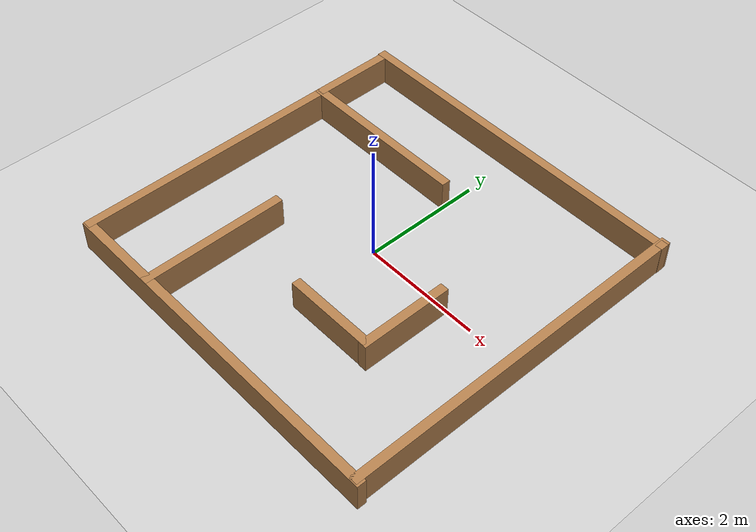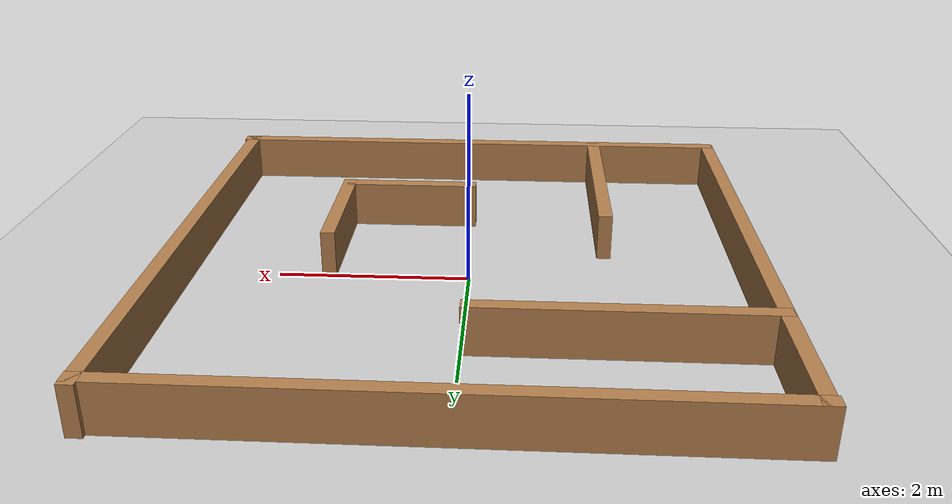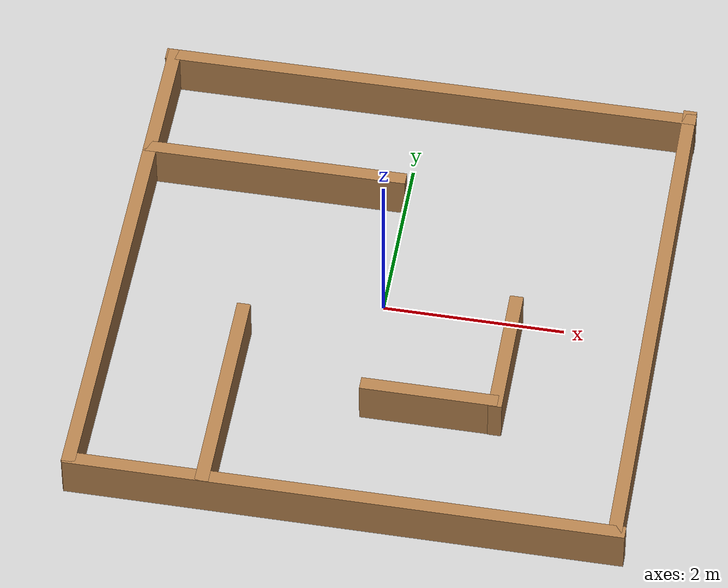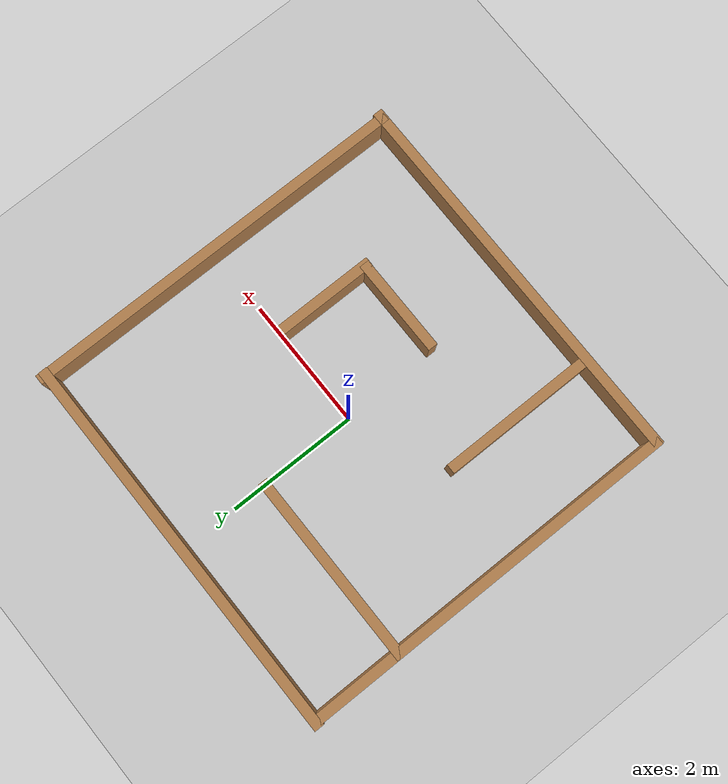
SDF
<sdf version="1.6">
 <world name="default">
  <light name="sun" type="directional">
   <pose>0 0 10 0 -0 0</pose>
   <diffuse>0.8 0.8 0.8 1</diffuse>
   <specular>0.2 0.2 0.2 1</specular>
   <attenuation>
    <range>1000</range>
    <constant>0.9</constant>
    <linear>0.01</linear>
    <quadratic>0.001</quadratic>
   </attenuation>
   <direction>-0.5 0.1 -0.9</direction>
  </light>
  <model name="ground_plane">
   <static>1</static>
   <link name="link">
    <collision name="collision">
     <geometry><plane><normal>0 0 1</normal><size>100 100</size></plane></geometry>
     <surface>
      <contact><collide_bitmask>65535</collide_bitmask></contact>
      <friction><ode><mu>100</mu><mu2>50</mu2></ode></friction>
     </surface>
    </collision>
    <visual name="visual">
     <cast_shadows>0</cast_shadows>
     <geometry><plane><normal>0 0 1</normal><size>100 100</size></plane></geometry>
     <material>
      <script><uri>file://media/materials/scripts/gazebo.material</uri><name>Gazebo/Grey</name></script>
     </material>
    </visual>
   </link>
  </model>
  <gravity>0 0 -9.8</gravity>
  <magnetic_field>6e-06 2.3e-05 -4.2e-05</magnetic_field>
  <atmosphere type="adiabatic"/>
  <physics name="default_physics" default="0" type="ode">
   <max_step_size>0.001</max_step_size>
   <real_time_factor>1</real_time_factor>
   <real_time_update_rate>1000</real_time_update_rate>
  </physics>
  <scene><ambient>0.4 0.4 0.4 1</ambient><background>0.7 0.7 0.7 1</background><shadows>1</shadows></scene>
  <audio><device>default</device></audio>
  <spherical_coordinates>
   <surface_model>EARTH_WGS84</surface_model>
   <latitude_deg>0</latitude_deg>
   <longitude_deg>0</longitude_deg>
   <elevation>0</elevation>
   <heading_deg>0</heading_deg>
  </spherical_coordinates>
  <model name="project_medium_v2">
   <link name="Wall_0">
    <pose>-0.00688 4.55592 0 0 -0 0</pose>
    <inertial>
     <inertia><ixx>0</ixx><ixy>0</ixy><ixz>0</ixz><iyy>0</iyy><iyz>0</iyz><izz>0</izz></inertia>
     <mass>0</mass>
    </inertial>
    <visual name="Wall_0_Visual">
     <pose>0 0 0.25 0 -0 0</pose>
     <geometry><box><size>6.03775 0.15 0.5</size></box></geometry>
     <material>
      <script><uri>file://media/materials/scripts/gazebo.material</uri><name>Gazebo/Wood</name></script>
      <ambient>1 1 1 1</ambient>
     </material>
    </visual>
    <collision name="Wall_0_Collision">
     <pose>0 0 0.25 0 -0 0</pose>
     <geometry><box><size>6.03775 0.15 0.5</size></box></geometry>
     <surface>
      <friction>
       <ode><mu>1</mu><mu2>1</mu2><fdir1>0 0 0</fdir1><slip1>0</slip1><slip2>0</slip2></ode>
       <torsional>
        <coefficient>1</coefficient>
        <patch_radius>0</patch_radius>
        <surface_radius>0</surface_radius>
        <use_patch_radius>1</use_patch_radius>
        <ode><slip>0</slip></ode>
       </torsional>
      </friction>
      <bounce><restitution_coefficient>0</restitution_coefficient><threshold>1e+06</threshold></bounce>
      <contact>
       <collide_without_contact>0</collide_without_contact>
       <collide_without_contact_bitmask>1</collide_without_contact_bitmask>
       <collide_bitmask>1</collide_bitmask>
       <ode>
        <soft_cfm>0</soft_cfm>
        <soft_erp>0.2</soft_erp>
        <kp>1e+13</kp>
        <kd>1</kd>
        <max_vel>0.01</max_vel>
        <min_depth>0</min_depth>
       </ode>
       <bullet>
        <split_impulse>1</split_impulse>
        <split_impulse_penetration_threshold>-0.01</split_impulse_penetration_threshold>
        <soft_cfm>0</soft_cfm>
        <soft_erp>0.2</soft_erp>
        <kp>1e+13</kp>
        <kd>1</kd>
       </bullet>
      </contact>
     </surface>
    </collision>
   </link>
   <link name="Wall_0_clone">
    <pose>-1.52053 3.15822 0 0 -0 0</pose>
    <inertial>
     <inertia><ixx>0</ixx><ixy>0</ixy><ixz>0</ixz><iyy>0</iyy><iyz>0</iyz><izz>0</izz></inertia>
     <mass>0</mass>
    </inertial>
    <visual name="Wall_0_Visual">
     <pose>0 0 0.25 0 -0 0</pose>
     <geometry><box><size>2.95345 0.15 0.5</size></box></geometry>
     <material>
      <script><uri>file://media/materials/scripts/gazebo.material</uri><name>Gazebo/Wood</name></script>
      <ambient>1 1 1 1</ambient>
      <shader type="pixel"/>
     </material>
    </visual>
    <collision name="Wall_0_Collision">
     <pose>0 0 0.25 0 -0 0</pose>
     <geometry><box><size>2.95345 0.15 0.5</size></box></geometry>
     <surface>
      <friction>
       <ode><mu>1</mu><mu2>1</mu2><fdir1>0 0 0</fdir1><slip1>0</slip1><slip2>0</slip2></ode>
       <torsional>
        <coefficient>1</coefficient>
        <patch_radius>0</patch_radius>
        <surface_radius>0</surface_radius>
        <use_patch_radius>1</use_patch_radius>
        <ode><slip>0</slip></ode>
       </torsional>
      </friction>
      <bounce><restitution_coefficient>0</restitution_coefficient><threshold>1e+06</threshold></bounce>
      <contact>
       <collide_without_contact>0</collide_without_contact>
       <collide_without_contact_bitmask>1</collide_without_contact_bitmask>
       <collide_bitmask>1</collide_bitmask>
       <ode>
        <soft_cfm>0</soft_cfm>
        <soft_erp>0.2</soft_erp>
        <kp>1e+13</kp>
        <kd>1</kd>
        <max_vel>0.01</max_vel>
        <min_depth>0</min_depth>
       </ode>
       <bullet>
        <split_impulse>1</split_impulse>
        <split_impulse_penetration_threshold>-0.01</split_impulse_penetration_threshold>
        <soft_cfm>0</soft_cfm>
        <soft_erp>0.2</soft_erp>
        <kp>1e+13</kp>
        <kd>1</kd>
       </bullet>
      </contact>
     </surface>
    </collision>
   </link>
   <link name="Wall_2">
    <pose>-2.93208 1.63826 0 0 0 -1.5708</pose>
    <inertial>
     <inertia><ixx>0</ixx><ixy>0</ixy><ixz>0</ixz><iyy>0</iyy><iyz>0</iyz><izz>0</izz></inertia>
     <mass>0</mass>
    </inertial>
    <visual name="Wall_2_Visual">
     <pose>0 0 0.25 0 -0 0</pose>
     <geometry><box><size>5.98367 0.15 0.5</size></box></geometry>
     <material>
      <script><uri>file://media/materials/scripts/gazebo.material</uri><name>Gazebo/Wood</name></script>
      <ambient>1 1 1 1</ambient>
     </material>
    </visual>
    <collision name="Wall_2_Collision">
     <pose>0 0 0.25 0 -0 0</pose>
     <geometry><box><size>5.98367 0.15 0.5</size></box></geometry>
     <surface>
      <friction>
       <ode><mu>1</mu><mu2>1</mu2><fdir1>0 0 0</fdir1><slip1>0</slip1><slip2>0</slip2></ode>
       <torsional>
        <coefficient>1</coefficient>
        <patch_radius>0</patch_radius>
        <surface_radius>0</surface_radius>
        <use_patch_radius>1</use_patch_radius>
        <ode><slip>0</slip></ode>
       </torsional>
      </friction>
      <bounce><restitution_coefficient>0</restitution_coefficient><threshold>1e+06</threshold></bounce>
      <contact>
       <collide_without_contact>0</collide_without_contact>
       <collide_without_contact_bitmask>1</collide_without_contact_bitmask>
       <collide_bitmask>1</collide_bitmask>
       <ode>
        <soft_cfm>0</soft_cfm>
        <soft_erp>0.2</soft_erp>
        <kp>1e+13</kp>
        <kd>1</kd>
        <max_vel>0.01</max_vel>
        <min_depth>0</min_depth>
       </ode>
       <bullet>
        <split_impulse>1</split_impulse>
        <split_impulse_penetration_threshold>-0.01</split_impulse_penetration_threshold>
        <soft_cfm>0</soft_cfm>
        <soft_erp>0.2</soft_erp>
        <kp>1e+13</kp>
        <kd>1</kd>
       </bullet>
      </contact>
     </surface>
    </collision>
   </link>
   <link name="Wall_2_clone">
    <pose>-1.48586 -0.140032 0 0 0 -1.5708</pose>
    <inertial>
     <inertia><ixx>0</ixx><ixy>0</ixy><ixz>0</ixz><iyy>0</iyy><iyz>0</iyz><izz>0</izz></inertia>
     <mass>0</mass>
    </inertial>
    <visual name="Wall_2_Visual">
     <pose>0 0 0.25 0 -0 0</pose>
     <geometry><box><size>2.46727 0.15 0.5</size></box></geometry>
     <material>
      <script><uri>file://media/materials/scripts/gazebo.material</uri><name>Gazebo/Wood</name></script>
      <ambient>1 1 1 1</ambient>
      <shader type="pixel"/>
     </material>
    </visual>
    <collision name="Wall_2_Collision">
     <pose>0 0 0.25 0 -0 0</pose>
     <geometry><box><size>2.46727 0.15 0.5</size></box></geometry>
     <surface>
      <friction>
       <ode><mu>1</mu><mu2>1</mu2><fdir1>0 0 0</fdir1><slip1>0</slip1><slip2>0</slip2></ode>
       <torsional>
        <coefficient>1</coefficient>
        <patch_radius>0</patch_radius>
        <surface_radius>0</surface_radius>
        <use_patch_radius>1</use_patch_radius>
        <ode><slip>0</slip></ode>
       </torsional>
      </friction>
      <bounce><restitution_coefficient>0</restitution_coefficient><threshold>1e+06</threshold></bounce>
      <contact>
       <collide_without_contact>0</collide_without_contact>
       <collide_without_contact_bitmask>1</collide_without_contact_bitmask>
       <collide_bitmask>1</collide_bitmask>
       <ode>
        <soft_cfm>0</soft_cfm>
        <soft_erp>0.2</soft_erp>
        <kp>1e+13</kp>
        <kd>1</kd>
        <max_vel>0.01</max_vel>
        <min_depth>0</min_depth>
       </ode>
       <bullet>
        <split_impulse>1</split_impulse>
        <split_impulse_penetration_threshold>-0.01</split_impulse_penetration_threshold>
        <soft_cfm>0</soft_cfm>
        <soft_erp>0.2</soft_erp>
        <kp>1e+13</kp>
        <kd>1</kd>
       </bullet>
      </contact>
     </surface>
    </collision>
   </link>
   <link name="Wall_2_clone_0">
    <pose>1.42546 0.915273 0 0 0 -1.5708</pose>
    <inertial>
     <inertia><ixx>0</ixx><ixy>0</ixy><ixz>0</ixz><iyy>0</iyy><iyz>0</iyz><izz>0</izz></inertia>
     <mass>0</mass>
    </inertial>
    <visual name="Wall_2_Visual">
     <pose>0 0 0.25 0 -0 0</pose>
     <geometry><box><size>1.55086 0.15 0.5</size></box></geometry>
     <material>
      <script><uri>file://media/materials/scripts/gazebo.material</uri><name>Gazebo/Wood</name></script>
      <ambient>1 1 1 1</ambient>
      <shader type="pixel"/>
     </material>
    </visual>
    <collision name="Wall_2_Collision">
     <pose>0 0 0.25 0 -0 0</pose>
     <geometry><box><size>1.55086 0.15 0.5</size></box></geometry>
     <surface>
      <friction>
       <ode><mu>1</mu><mu2>1</mu2><fdir1>0 0 0</fdir1><slip1>0</slip1><slip2>0</slip2></ode>
       <torsional>
        <coefficient>1</coefficient>
        <patch_radius>0</patch_radius>
        <surface_radius>0</surface_radius>
        <use_patch_radius>1</use_patch_radius>
        <ode><slip>0</slip></ode>
       </torsional>
      </friction>
      <bounce><restitution_coefficient>0</restitution_coefficient><threshold>1e+06</threshold></bounce>
      <contact>
       <collide_without_contact>0</collide_without_contact>
       <collide_without_contact_bitmask>1</collide_without_contact_bitmask>
       <collide_bitmask>1</collide_bitmask>
       <ode>
        <soft_cfm>0</soft_cfm>
        <soft_erp>0.2</soft_erp>
        <kp>1e+13</kp>
        <kd>1</kd>
        <max_vel>0.01</max_vel>
        <min_depth>0</min_depth>
       </ode>
       <bullet>
        <split_impulse>1</split_impulse>
        <split_impulse_penetration_threshold>-0.01</split_impulse_penetration_threshold>
        <soft_cfm>0</soft_cfm>
        <soft_erp>0.2</soft_erp>
        <kp>1e+13</kp>
        <kd>1</kd>
       </bullet>
      </contact>
     </surface>
    </collision>
   </link>
   <link name="Wall_3">
    <pose>0.023663 -1.30223 0 0 -0 0</pose>
    <inertial>
     <inertia><ixx>0</ixx><ixy>0</ixy><ixz>0</ixz><iyy>0</iyy><iyz>0</iyz><izz>0</izz></inertia>
     <mass>0</mass>
    </inertial>
    <visual name="Wall_3_Visual">
     <pose>0 0 0.25 0 -0 0</pose>
     <geometry><box><size>6.03891 0.15 0.5</size></box></geometry>
     <material>
      <script><uri>file://media/materials/scripts/gazebo.material</uri><name>Gazebo/Wood</name></script>
      <ambient>1 1 1 1</ambient>
     </material>
    </visual>
    <collision name="Wall_3_Collision">
     <pose>0 0 0.25 0 -0 0</pose>
     <geometry><box><size>6.03891 0.15 0.5</size></box></geometry>
     <surface>
      <friction>
       <ode><mu>1</mu><mu2>1</mu2><fdir1>0 0 0</fdir1><slip1>0</slip1><slip2>0</slip2></ode>
       <torsional>
        <coefficient>1</coefficient>
        <patch_radius>0</patch_radius>
        <surface_radius>0</surface_radius>
        <use_patch_radius>1</use_patch_radius>
        <ode><slip>0</slip></ode>
       </torsional>
      </friction>
      <bounce><restitution_coefficient>0</restitution_coefficient><threshold>1e+06</threshold></bounce>
      <contact>
       <collide_without_contact>0</collide_without_contact>
       <collide_without_contact_bitmask>1</collide_without_contact_bitmask>
       <collide_bitmask>1</collide_bitmask>
       <ode>
        <soft_cfm>0</soft_cfm>
        <soft_erp>0.2</soft_erp>
        <kp>1e+13</kp>
        <kd>1</kd>
        <max_vel>0.01</max_vel>
        <min_depth>0</min_depth>
       </ode>
       <bullet>
        <split_impulse>1</split_impulse>
        <split_impulse_penetration_threshold>-0.01</split_impulse_penetration_threshold>
        <soft_cfm>0</soft_cfm>
        <soft_erp>0.2</soft_erp>
        <kp>1e+13</kp>
        <kd>1</kd>
       </bullet>
      </contact>
     </surface>
    </collision>
   </link>
   <link name="Wall_3_clone">
    <pose>0.699294 0.220437 0 0 -0 0</pose>
    <inertial>
     <inertia><ixx>0</ixx><ixy>0</ixy><ixz>0</ixz><iyy>0</iyy><iyz>0</iyz><izz>0</izz></inertia>
     <mass>0</mass>
    </inertial>
    <visual name="Wall_3_Visual">
     <pose>0 0 0.25 0 -0 0</pose>
     <geometry><box><size>1.49871 0.15 0.5</size></box></geometry>
     <material>
      <script><uri>file://media/materials/scripts/gazebo.material</uri><name>Gazebo/Wood</name></script>
      <ambient>1 1 1 1</ambient>
      <shader type="pixel"/>
     </material>
    </visual>
    <collision name="Wall_3_Collision">
     <pose>0 0 0.25 0 -0 0</pose>
     <geometry><box><size>1.49871 0.15 0.5</size></box></geometry>
     <surface>
      <friction>
       <ode><mu>1</mu><mu2>1</mu2><fdir1>0 0 0</fdir1><slip1>0</slip1><slip2>0</slip2></ode>
       <torsional>
        <coefficient>1</coefficient>
        <patch_radius>0</patch_radius>
        <surface_radius>0</surface_radius>
        <use_patch_radius>1</use_patch_radius>
        <ode><slip>0</slip></ode>
       </torsional>
      </friction>
      <bounce><restitution_coefficient>0</restitution_coefficient><threshold>1e+06</threshold></bounce>
      <contact>
       <collide_without_contact>0</collide_without_contact>
       <collide_without_contact_bitmask>1</collide_without_contact_bitmask>
       <collide_bitmask>1</collide_bitmask>
       <ode>
        <soft_cfm>0</soft_cfm>
        <soft_erp>0.2</soft_erp>
        <kp>1e+13</kp>
        <kd>1</kd>
        <max_vel>0.01</max_vel>
        <min_depth>0</min_depth>
       </ode>
       <bullet>
        <split_impulse>1</split_impulse>
        <split_impulse_penetration_threshold>-0.01</split_impulse_penetration_threshold>
        <soft_cfm>0</soft_cfm>
        <soft_erp>0.2</soft_erp>
        <kp>1e+13</kp>
        <kd>1</kd>
       </bullet>
      </contact>
     </surface>
    </collision>
   </link>
   <link name="Wall_4">
    <pose>2.93188 1.65955 0 0 -0 1.5708</pose>
    <inertial>
     <inertia><ixx>0</ixx><ixy>0</ixy><ixz>0</ixz><iyy>0</iyy><iyz>0</iyz><izz>0</izz></inertia>
     <mass>0</mass>
    </inertial>
    <visual name="Wall_4_Visual">
     <pose>0 0 0.25 0 -0 0</pose>
     <geometry><box><size>6.03543 0.15 0.5</size></box></geometry>
     <material>
      <script><uri>file://media/materials/scripts/gazebo.material</uri><name>Gazebo/Wood</name></script>
      <ambient>1 1 1 1</ambient>
     </material>
    </visual>
    <collision name="Wall_4_Collision">
     <pose>0 0 0.25 0 -0 0</pose>
     <geometry><box><size>6.03543 0.15 0.5</size></box></geometry>
     <surface>
      <friction>
       <ode><mu>1</mu><mu2>1</mu2><fdir1>0 0 0</fdir1><slip1>0</slip1><slip2>0</slip2></ode>
       <torsional>
        <coefficient>1</coefficient>
        <patch_radius>0</patch_radius>
        <surface_radius>0</surface_radius>
        <use_patch_radius>1</use_patch_radius>
        <ode><slip>0</slip></ode>
       </torsional>
      </friction>
      <bounce><restitution_coefficient>0</restitution_coefficient><threshold>1e+06</threshold></bounce>
      <contact>
       <collide_without_contact>0</collide_without_contact>
       <collide_without_contact_bitmask>1</collide_without_contact_bitmask>
       <collide_bitmask>1</collide_bitmask>
       <ode>
        <soft_cfm>0</soft_cfm>
        <soft_erp>0.2</soft_erp>
        <kp>1e+13</kp>
        <kd>1</kd>
        <max_vel>0.01</max_vel>
        <min_depth>0</min_depth>
       </ode>
       <bullet>
        <split_impulse>1</split_impulse>
        <split_impulse_penetration_threshold>-0.01</split_impulse_penetration_threshold>
        <soft_cfm>0</soft_cfm>
        <soft_erp>0.2</soft_erp>
        <kp>1e+13</kp>
        <kd>1</kd>
       </bullet>
      </contact>
     </surface>
    </collision>
   </link>
   <static>1</static>
   <pose>0.045972 -1.68924 0 0 -0 0</pose>
  </model>
 </world>
</sdf>
